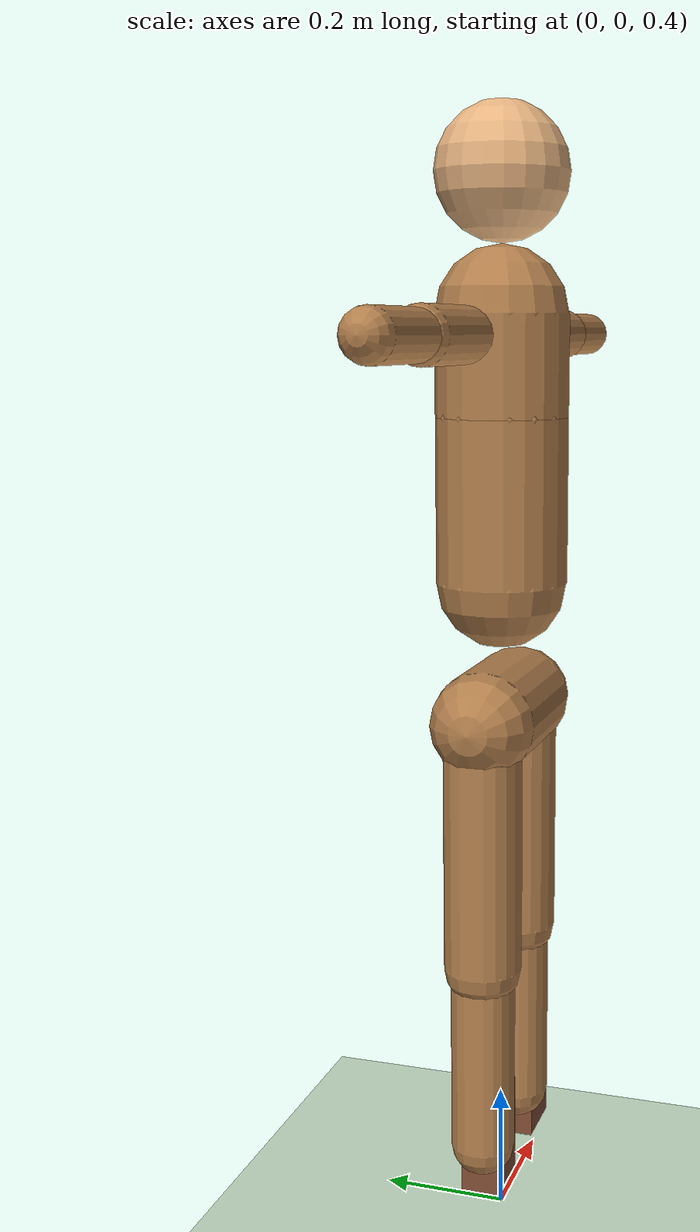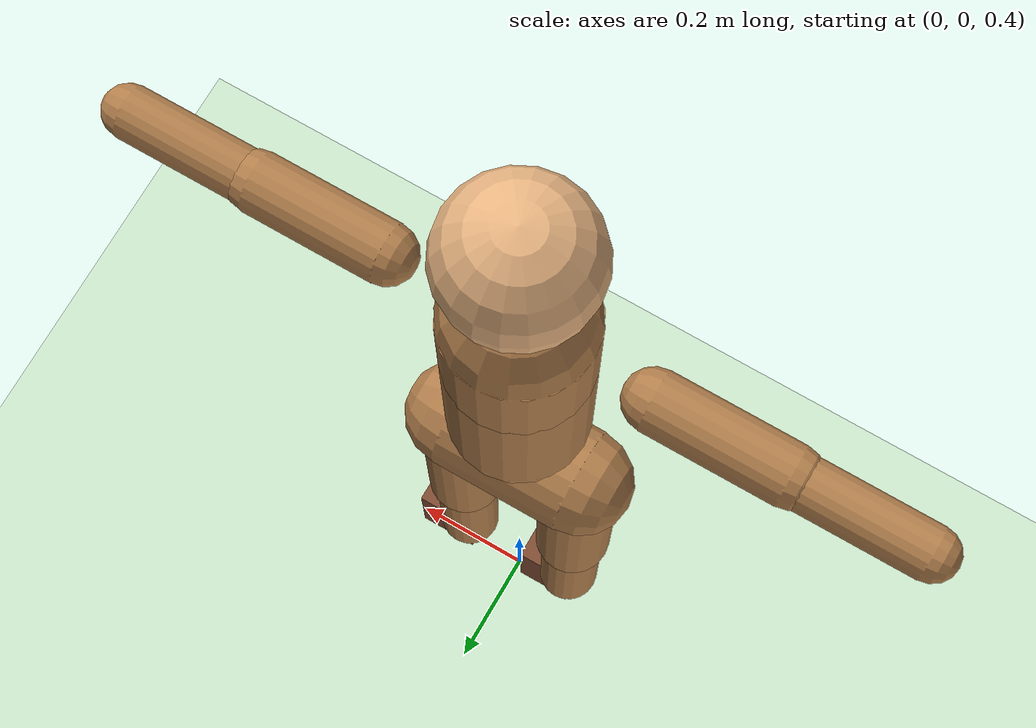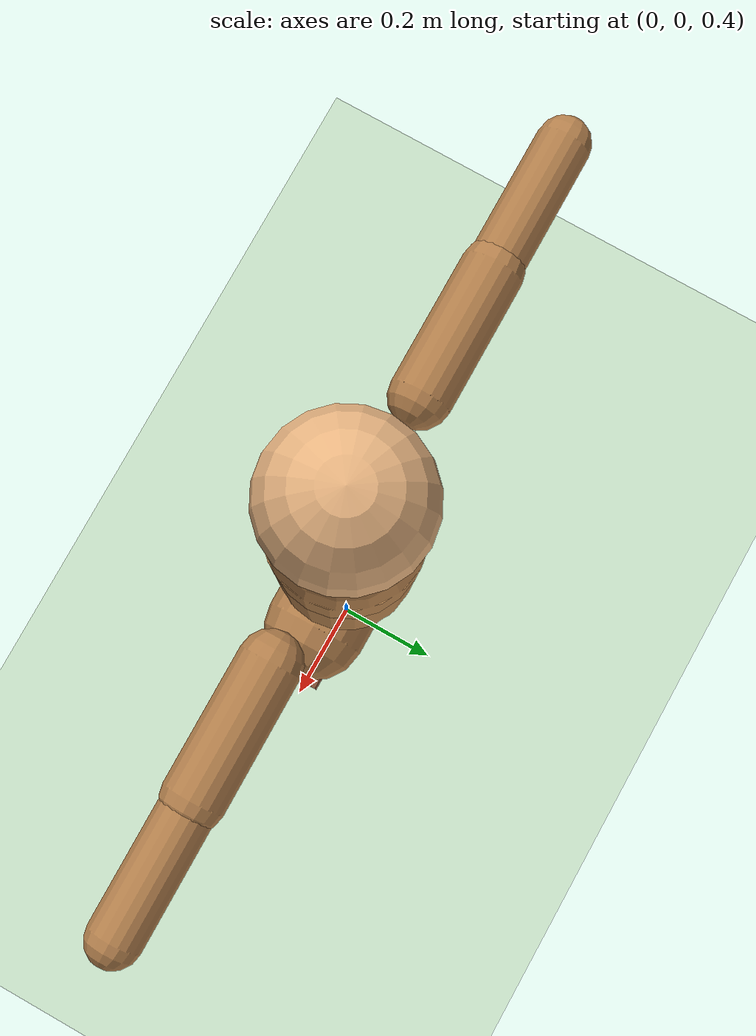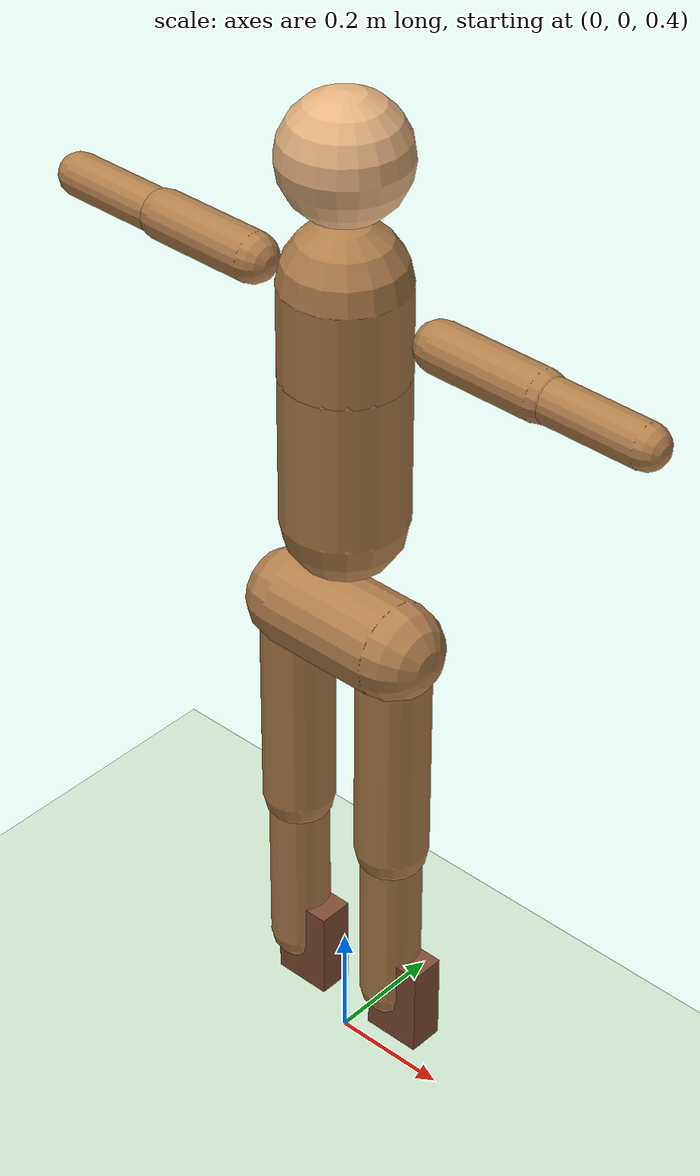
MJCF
<mujoco model="humanoid">
    <option timestep="0.005" gravity="0 0 -9.81"/>

    <default>
        <joint armature="0.01" damping="0.5" limited="true"/>
        <geom contype="1" conaffinity="1" condim="3" friction="0.8 0.1 0.1" margin="0.001"/>
    </default>

    <worldbody>
        <!-- Ground plane -->
        <geom type="plane" size="50 50 0.1" rgba="0.8 0.9 0.8 1"/>

        <!-- Pelvis (root) -->
        <body name="pelvis" pos="0 0 1.25">
            <joint name="root" type="free"/>
            <geom name="pelvis_geom" type="capsule" fromto="-0.1 0 0 0.1 0 0" size="0.08" rgba="0.7 0.5 0.3 1"/>

            <!-- Torso -->
            <body name="torso" pos="0 0 0.2">
                <joint name="abdomen_y" type="hinge" axis="0 1 0" range="-45 45"/>
                <geom name="torso_geom" type="capsule" fromto="0 0 0 0 0 0.25" size="0.1" rgba="0.7 0.5 0.3 1"/>

                <!-- Upper torso -->
                <body name="upper_torso" pos="0 0 0.25">
                    <joint name="abdomen_x" type="hinge" axis="1 0 0" range="-35 35"/>
                    <geom name="upper_torso_geom" type="capsule" fromto="0 0 0 0 0 0.15" size="0.1" rgba="0.7 0.5 0.3 1"/>

                    <!-- Head -->
                    <body name="head" pos="0 0 0.25">
                        <joint name="neck" type="hinge" axis="0 1 0" range="-40 40"/>
                        <geom name="head_geom" type="sphere" size="0.1" pos="0 0 0.1" rgba="0.9 0.7 0.5 1"/>
                    </body>

                    <!-- Right arm -->
                    <body name="right_upper_arm" pos="-0.18 0 0.12">
                        <joint name="right_shoulder_x" type="hinge" axis="1 0 0" range="-85 60"/>
                        <geom type="capsule" fromto="0 0 0 -0.18 0 0" size="0.04" rgba="0.7 0.5 0.3 1"/>

                        <body name="right_lower_arm" pos="-0.18 0 0">
                            <joint name="right_elbow" type="hinge" axis="0 1 0" range="-90 50"/>
                            <geom type="capsule" fromto="0 0 0 -0.18 0 0" size="0.035" rgba="0.7 0.5 0.3 1"/>
                        </body>
                    </body>

                    <!-- Left arm -->
                    <body name="left_upper_arm" pos="0.18 0 0.12">
                        <joint name="left_shoulder_x" type="hinge" axis="1 0 0" range="-60 85"/>
                        <geom type="capsule" fromto="0 0 0 0.18 0 0" size="0.04" rgba="0.7 0.5 0.3 1"/>

                        <body name="left_lower_arm" pos="0.18 0 0">
                            <joint name="left_elbow" type="hinge" axis="0 1 0" range="-90 50"/>
                            <geom type="capsule" fromto="0 0 0 0.18 0 0" size="0.035" rgba="0.7 0.5 0.3 1"/>
                        </body>
                    </body>
                </body>
            </body>

            <!-- Right leg -->
            <body name="right_thigh" pos="-0.1 0 -0.05">
                <joint name="right_hip_x" type="hinge" axis="1 0 0" range="-25 110"/>
                <geom type="capsule" fromto="0 0 0 0 0 -0.34" size="0.06" rgba="0.7 0.5 0.3 1"/>

                <body name="right_shin" pos="0 0 -0.34">
                    <joint name="right_knee" type="hinge" axis="0 1 0" range="-160 -2"/>
                    <geom type="capsule" fromto="0 0 0 0 0 -0.3" size="0.05" rgba="0.7 0.5 0.3 1"/>

                    <body name="right_foot" pos="0 0 -0.3">
                        <joint name="right_ankle" type="hinge" axis="0 1 0" range="-50 50"/>
                        <geom type="box" size="0.05 0.03 0.08" pos="0.03 0 0" rgba="0.5 0.3 0.2 1"/>
                    </body>
                </body>
            </body>

            <!-- Left leg -->
            <body name="left_thigh" pos="0.1 0 -0.05">
                <joint name="left_hip_x" type="hinge" axis="1 0 0" range="-25 110"/>
                <geom type="capsule" fromto="0 0 0 0 0 -0.34" size="0.06" rgba="0.7 0.5 0.3 1"/>

                <body name="left_shin" pos="0 0 -0.34">
                    <joint name="left_knee" type="hinge" axis="0 1 0" range="-160 -2"/>
                    <geom type="capsule" fromto="0 0 0 0 0 -0.3" size="0.05" rgba="0.7 0.5 0.3 1"/>

                    <body name="left_foot" pos="0 0 -0.3">
                        <joint name="left_ankle" type="hinge" axis="0 1 0" range="-50 50"/>
                        <geom type="box" size="0.05 0.03 0.08" pos="0.03 0 0" rgba="0.5 0.3 0.2 1"/>
                    </body>
                </body>
            </body>
        </body>
    </worldbody>

    <actuator>
        <!-- Torso -->
        <motor joint="abdomen_y" ctrlrange="-1 1" gear="100"/>
        <motor joint="abdomen_x" ctrlrange="-1 1" gear="100"/>
        <motor joint="neck" ctrlrange="-1 1" gear="25"/>

        <!-- Right arm -->
        <motor joint="right_shoulder_x" ctrlrange="-1 1" gear="75"/>
        <motor joint="right_elbow" ctrlrange="-1 1" gear="75"/>

        <!-- Left arm -->
        <motor joint="left_shoulder_x" ctrlrange="-1 1" gear="75"/>
        <motor joint="left_elbow" ctrlrange="-1 1" gear="75"/>

        <!-- Right leg -->
        <motor joint="right_hip_x" ctrlrange="-1 1" gear="150"/>
        <motor joint="right_knee" ctrlrange="-1 1" gear="150"/>
        <motor joint="right_ankle" ctrlrange="-1 1" gear="90"/>

        <!-- Left leg -->
        <motor joint="left_hip_x" ctrlrange="-1 1" gear="150"/>
        <motor joint="left_knee" ctrlrange="-1 1" gear="150"/>
        <motor joint="left_ankle" ctrlrange="-1 1" gear="90"/>
    </actuator>

    <sensor>
        <!-- Pelvis sensors -->
        <framepos objtype="body" objname="pelvis"/>
        <framequat objtype="body" objname="pelvis"/>
        <framelinvel objtype="body" objname="pelvis"/>
        <frameangvel objtype="body" objname="pelvis"/>

        <!-- Joint position sensors -->
        <jointpos joint="abdomen_y"/>
        <jointpos joint="abdomen_x"/>
        <jointpos joint="neck"/>
        <jointpos joint="right_shoulder_x"/>
        <jointpos joint="right_elbow"/>
        <jointpos joint="left_shoulder_x"/>
        <jointpos joint="left_elbow"/>
        <jointpos joint="right_hip_x"/>
        <jointpos joint="right_knee"/>
        <jointpos joint="right_ankle"/>
        <jointpos joint="left_hip_x"/>
        <jointpos joint="left_knee"/>
        <jointpos joint="left_ankle"/>

        <!-- Joint velocity sensors -->
        <jointvel joint="abdomen_y"/>
        <jointvel joint="abdomen_x"/>
        <jointvel joint="neck"/>
        <jointvel joint="right_shoulder_x"/>
        <jointvel joint="right_elbow"/>
        <jointvel joint="left_shoulder_x"/>
        <jointvel joint="left_elbow"/>
        <jointvel joint="right_hip_x"/>
        <jointvel joint="right_knee"/>
        <jointvel joint="right_ankle"/>
        <jointvel joint="left_hip_x"/>
        <jointvel joint="left_knee"/>
        <jointvel joint="left_ankle"/>
    </sensor>
</mujoco>
